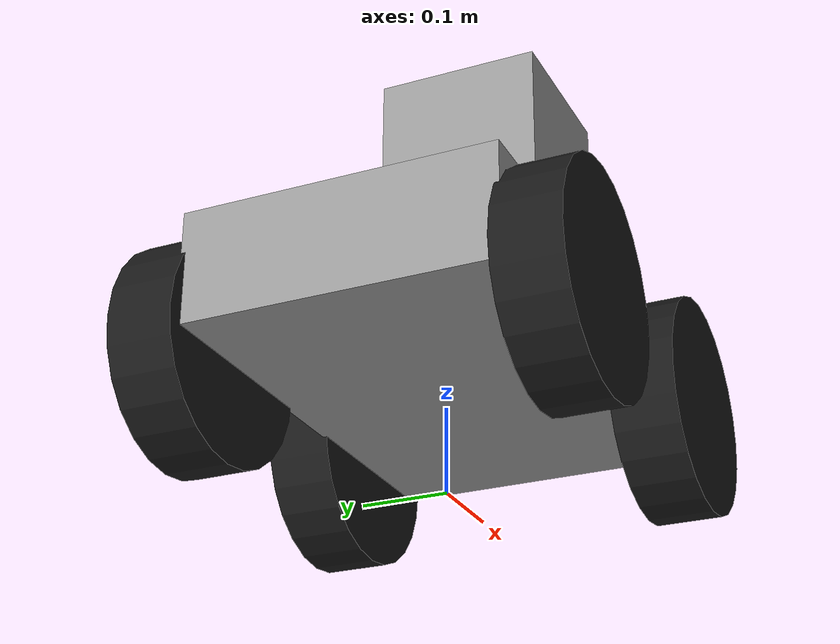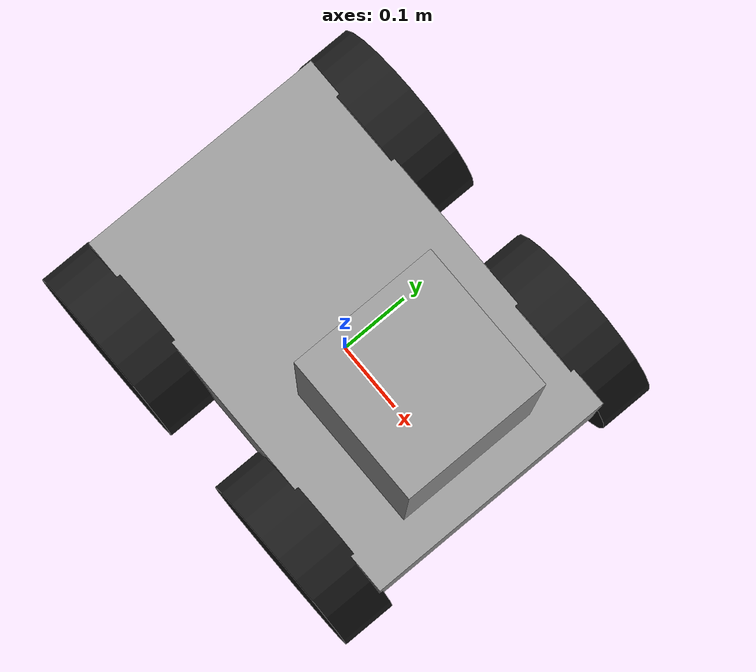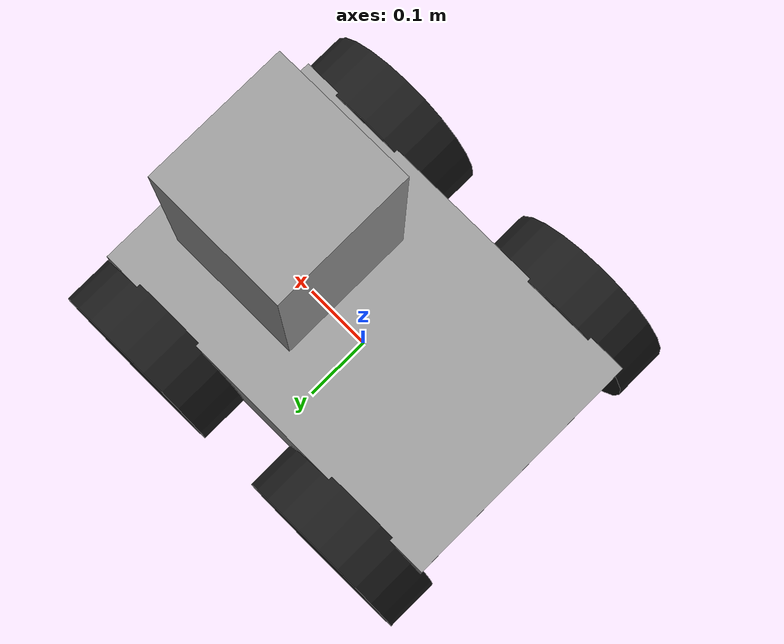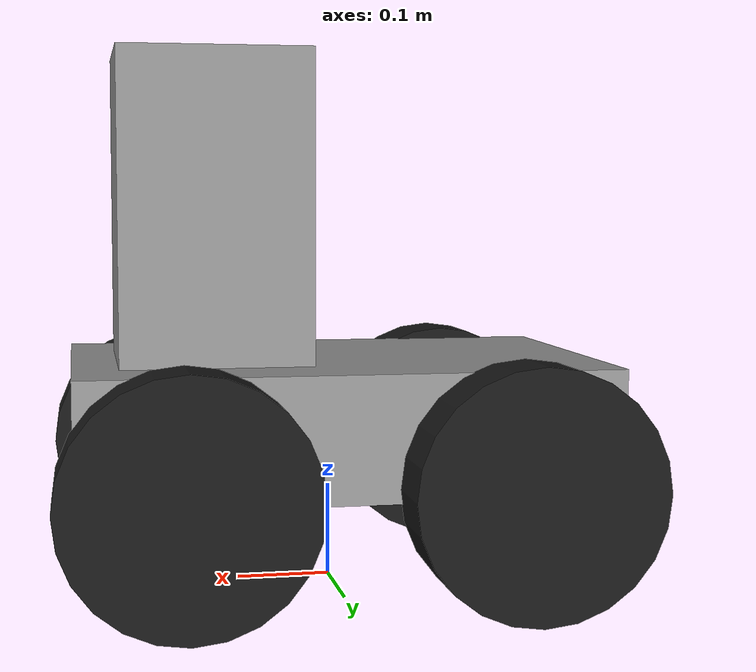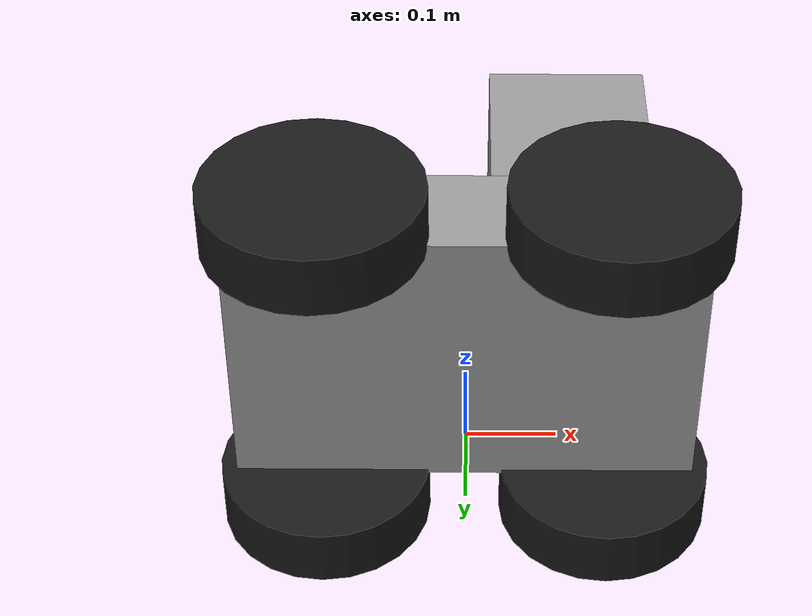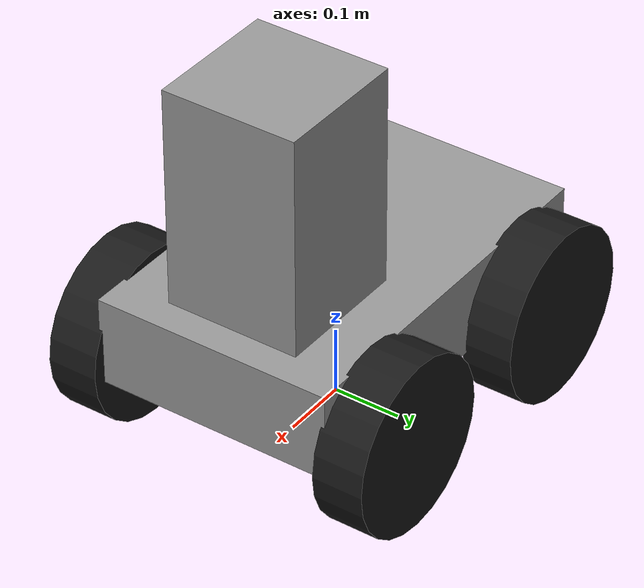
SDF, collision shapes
<?xml version="1.0"?>
<sdf version="1.6">
  <model name="coro_jeanine_sensor_config_1">
    <pose>0 0 0.1275 0 0 0</pose>
    <enable_wind>1</enable_wind>
    <link name="base_link">
      <inertial>
        <pose>0 0 0.09 0 0 0</pose>
        <mass>26.6</mass>
        <inertia>
          <ixx>0.387</ixx>
          <iyy>0.790</iyy>
          <izz>0.962</izz>
        </inertia>
      </inertial>

      <collision name="chassis_collision">
        <pose>0 0 0.05 0 0 0</pose>
        <geometry>
          <box>
            <size>0.555 0.355 0.13</size>
          </box>
        </geometry>
      </collision>
      <collision name="tower_collision">
        <pose>0.13 0 0.27 0 0 0</pose>
        <geometry>
          <box>
            <size>0.2 0.2 0.34</size>
          </box>
        </geometry>
      </collision>

      <visual name="chassis_main_visual">
        <pose>0 0 0.07 0 0 0</pose>
        <geometry>
          <box>
            <size>0.38 0.3 0.13</size>
          </box>
        </geometry>
        <material>
          <ambient>0.6 0.6 0.6 1.0</ambient>
          <diffuse>0.6 0.6 0.6 1.0</diffuse>
        </material>
      </visual>

      <visual name="wheel_mount_visual_front_left">
        <pose>0.17 0.12 0 0 0 0</pose>
        <geometry>
          <box>
            <size>0.03 0.06 0.02</size>
          </box>
        </geometry>
        <material>
          <ambient>0.6 0.6 0.6 1.0</ambient>
          <diffuse>0.6 0.6 0.6 1.0</diffuse>
        </material>
      </visual>
      <visual name="wheel_mount_visual_front_right">
        <pose>0.17 -0.12 0 0 0 0</pose>
        <geometry>
          <box>
            <size>0.03 0.06 0.02</size>
          </box>
        </geometry>
        <material>
          <ambient>0.6 0.6 0.6 1.0</ambient>
          <diffuse>0.6 0.6 0.6 1.0</diffuse>
        </material>
      </visual>
      <visual name="wheel_mount_visual_rear_left">
        <pose>-0.17 0.12 0 0 0 0</pose>
        <geometry>
          <box>
            <size>0.03 0.06 0.02</size>
          </box>
        </geometry>
        <material>
          <ambient>0.6 0.6 0.6 1.0</ambient>
          <diffuse>0.6 0.6 0.6 1.0</diffuse>
        </material>
      </visual>
      <visual name="wheel_mount_visual_rear_right">
        <pose>-0.17 -0.12 0 0 0 0</pose>
        <geometry>
          <box>
            <size>0.03 0.06 0.02</size>
          </box>
        </geometry>
        <material>
          <ambient>0.6 0.6 0.6 1.0</ambient>
          <diffuse>0.6 0.6 0.6 1.0</diffuse>
        </material>
      </visual>

      <visual name="emergency_stop_bottom_visual">
        <pose>0.11 0.125 0.145 0 0 0</pose>
        <geometry>
          <cylinder>
            <length>0.015</length>
            <radius>0.015</radius>
          </cylinder>
        </geometry>
        <material>
          <ambient>0.7059 0.7059 0.7059 1.0</ambient>
          <diffuse>0.7059 0.7059 0.7059 1.0</diffuse>
        </material>
      </visual>
      <visual name="emergency_stop_top_visual">
        <pose>0.11 0.125 0.155 0 0 0</pose>
        <geometry>
          <cylinder>
            <length>0.005</length>
            <radius>0.02</radius>
          </cylinder>
        </geometry>
        <material>
          <ambient>1.0 0.0 0.0 1.0</ambient>
          <diffuse>1.0 0.0 0.0 1.0</diffuse>
        </material>
      </visual>

      <visual name="plate1_visual">
        <pose>0 0 0.435 0 0 0</pose>
        <geometry>
          <box>
            <size>0.2 0.2 0.005</size>
          </box>
        </geometry>
        <material>
          <ambient>200 200 200 1</ambient>
          <diffuse>200 200 200 1</diffuse>
        </material>
      </visual>

      <visual name="plate2_visual">
        <pose>0 0 0.325 0 0 0</pose>
        <geometry>
          <box>
            <size>0.2 0.2 0.005</size>
          </box>
        </geometry>
        <material>
          <ambient>200 200 200 1</ambient>
          <diffuse>200 200 200 1</diffuse>
        </material>
      </visual>

      <visual name="plate3_visual_was12">
        <pose>0 0 0.135 0 0 0</pose>
        <geometry>
          <box>
            <size>0.2 0.2 0.005</size>
          </box>
        </geometry>
        <material>
          <ambient>240 240 240 1</ambient>
          <diffuse>240 240 240 1</diffuse>
        </material>
      </visual>

      <visual name="beam1_visual">
        <pose>0.091 0.091 0.285 0 0 0</pose>
        <geometry>
          <box>
            <size>0.02 0.02 0.3</size>
          </box>
        </geometry>
        <material>
          <ambient>200 200 200 1</ambient>
          <diffuse>200 200 200 1</diffuse>
        </material>
      </visual>
      <visual name="beam2_visual">
        <pose>0.091 -0.091 0.285 0 0 0</pose>
        <geometry>
          <box>
            <size>0.02 0.02 0.3</size>
          </box>
        </geometry>
        <material>
          <ambient>200 200 200 1</ambient>
          <diffuse>200 200 200 1</diffuse>
        </material>
      </visual>
      <visual name="beam3_visual">
        <pose>-0.091 0.091 0.285 0 0 0</pose>
        <geometry>
          <box>
            <size>0.02 0.02 0.3</size>
          </box>
        </geometry>
        <material>
          <ambient>200 200 200 1</ambient>
          <diffuse>200 200 200 1</diffuse>
        </material>
      </visual>
      <visual name="beam4_visual">
        <pose>-0.091 -0.091 0.285 0 0 0</pose>
        <geometry>
          <box>
            <size>0.02 0.02 0.3</size>
          </box>
        </geometry>
        <material>
          <ambient>200 200 200 1</ambient>
          <diffuse>200 200 200 1</diffuse>
        </material>
      </visual>

      <visual name="d435i_realsense_camera_visual">
        <pose>0.08 0 0.408 0 0.52 0</pose>
        <geometry>
          <mesh>
            <scale>0.001 0.001 0.001</scale>
            <uri>../../meshes/joe/visual/realsense_d435.dae</uri>
          </mesh>
        </geometry>
      </visual>

      <visual name="vlp16_visual1">
        <pose>0 0 0.327 0 -0 0</pose>
        <geometry>
          <mesh>
            <scale>1 1 1</scale>
            <uri>../../meshes/joe/visual/VLP16_base_1.dae</uri>
          </mesh>
        </geometry>
      </visual>
      <visual name="vlp_visual2">
        <pose>0 0 0.327 0 -0 0</pose>
        <geometry>
          <mesh>
            <scale>1 1 1</scale>
            <uri>../../meshes/joe/visual/VLP16_base_2.dae</uri>
          </mesh>
        </geometry>
      </visual>
      <visual name="vlp_visual3">
        <pose>0 0 0.327 0 -0 0</pose>
        <geometry>
          <mesh>
            <scale>1 1 1</scale>
            <uri>../../meshes/joe/visual/VLP16_scan.dae</uri>
          </mesh>
        </geometry>
      </visual>

      <!-- MS-IMU3025 -->
      <sensor name="imu_sensor" type="imu">
        <always_on>1</always_on>
        <update_rate>50</update_rate>
        <imu>
                    <enable_orientation>0</enable_orientation>
                    <angular_velocity>
                        <x>
                            <noise type="gaussian">
                                <mean>0</mean>
                                <stddev>0.009</stddev>
                                <bias_mean>0.00075</bias_mean>
                                <bias_stddev>0.005</bias_stddev>
                                <dynamic_bias_stddev>0.00002</dynamic_bias_stddev>
                                <dynamic_bias_correlation_time>400.0</dynamic_bias_correlation_time>
                                <precision>0.00025</precision>
                            </noise>
                        </x>
                        <y>
                            <noise type="gaussian">
                                <mean>0</mean>
                                <stddev>0.009</stddev>
                                <bias_mean>0.00075</bias_mean>
                                <bias_stddev>0.005</bias_stddev>
                                <dynamic_bias_stddev>0.00002</dynamic_bias_stddev>
                                <dynamic_bias_correlation_time>400.0</dynamic_bias_correlation_time>
                                <precision>0.00025</precision>
                            </noise>
                        </y>
                        <z>
                            <noise type="gaussian">
                                <mean>0</mean>
                                <stddev>0.009</stddev>
                                <bias_mean>0.00075</bias_mean>
                                <bias_stddev>0.005</bias_stddev>
                                <dynamic_bias_stddev>0.00002</dynamic_bias_stddev>
                                <dynamic_bias_correlation_time>400.0</dynamic_bias_correlation_time>
                                <precision>0.00025</precision>
                            </noise>
                        </z>
                    </angular_velocity>
                    <linear_acceleration>
                        <x>
                            <noise type="gaussian">
                                <mean>0</mean>
                                <stddev>0.021</stddev>
                                <bias_mean>0.05</bias_mean>
                                <bias_stddev>0.0075</bias_stddev>
                                <dynamic_bias_stddev>0.000375</dynamic_bias_stddev>
                                <dynamic_bias_correlation_time>175.0</dynamic_bias_correlation_time>
                                <precision>0.005</precision>
                            </noise>
                        </x>
                        <y>
                            <noise type="gaussian">
                                <mean>0</mean>
                                <stddev>0.021</stddev>
                                <bias_mean>0.05</bias_mean>
                                <bias_stddev>0.0075</bias_stddev>
                                <dynamic_bias_stddev>0.000375</dynamic_bias_stddev>
                                <dynamic_bias_correlation_time>175.0</dynamic_bias_correlation_time>
                                <precision>0.005</precision>
                            </noise>
                        </y>
                        <z>
                            <noise type="gaussian">
                                <mean>0</mean>
                                <stddev>0.021</stddev>
                                <bias_mean>0.05</bias_mean>
                                <bias_stddev>0.0075</bias_stddev>
                                <dynamic_bias_stddev>0.000375</dynamic_bias_stddev>
                                <dynamic_bias_correlation_time>175.0</dynamic_bias_correlation_time>
                                <precision>0.005</precision>
                            </noise>
                        </z>
                    </linear_acceleration>
                </imu>
      </sensor>
      <sensor name="air_pressure" type="air_pressure">
        <always_on>1</always_on>
        <update_rate>20</update_rate>
        <air_pressure>
          <reference_altitude>0</reference_altitude>
          <noise type="gaussian">
            <mean>0.00000008</mean>
          </noise>
        </air_pressure>
      </sensor>
      <sensor name="magnetometer" type="magnetometer">
        <always_on>1</always_on>
        <update_rate>50</update_rate>
        <magnetometer>
          <x>
            <noise type="gaussian">
              <mean>0.000000080</mean>
              <bias_mean>0.000000400</bias_mean>
            </noise>
          </x>
          <y>
            <noise type="gaussian">
              <mean>0.000000080</mean>
              <bias_mean>0.000000400</bias_mean>
            </noise>
          </y>
          <z>
            <noise type="gaussian">
              <mean>0.000000080</mean>
              <bias_mean>0.000000400</bias_mean>
            </noise>
          </z>
        </magnetometer>
      </sensor>

      <!-- Based on Intel realsense D435 (intrinsics and distortion not modeled)-->
      <sensor name="rgbd_front" type="rgbd_camera">
        <pose>0.11 0 0.408 0 0.52 0</pose>
        <always_on>1</always_on>
        <update_rate>30</update_rate>
        <camera name="rgbd_front">
          <horizontal_fov>1.50098</horizontal_fov>
          <lens>
            <intrinsics>
              <!-- fx = fy = width / ( 2 * tan (hfov / 2 ) ) -->
              <fx>343.159</fx>
              <fy>343.159</fy>
              <!-- cx = ( width - 1 ) / 2 -->
              <cx>319.5</cx>
              <!-- cy = ( height - 1 ) / 2 -->
              <cy>179.5</cy>
              <s>0</s>
            </intrinsics>
          </lens>
          <distortion>
            <k1>0.0</k1>
            <k2>0.0</k2>
            <k3>0.0</k3>
            <p1>0.0</p1>
            <p2>0.0</p2>
            <center>0.5 0.5</center>
          </distortion>
          <image>
            <width>640</width>
            <height>360</height>
            <format>R8G8B8</format>
          </image>
          <clip>
            <near>0.01</near>
            <far>300</far>
          </clip>
          <depth_camera>
            <clip>
              <near>0.1</near>
              <far>10</far>
            </clip>
          </depth_camera>
          <noise>
            <type>gaussian</type>
            <mean>0</mean>
            <stddev>0.007</stddev>
          </noise>
        </camera>
      </sensor>

      <visual name="camera_front_visual">
        <pose>0.09 0.06 0.42 0 0 0</pose>
        <geometry>
          <box>
            <size>0.01 0.03 0.03</size>
          </box>
        </geometry>
        <material>
          <ambient>0.0 0.0 0.0 1.0</ambient>
          <diffuse>0.0 0.0 0.0 1.0</diffuse>
        </material>
      </visual>
      <visual name="camera_lens_front_visual">
        <pose>0.1 0.06 0.42 0 1.5707963267948966 0</pose>
        <geometry>
          <cylinder>
            <length>0.011</length>
            <radius>0.005</radius>
          </cylinder>
        </geometry>
        <material>
          <ambient>0.0 0.0 0.0 1.0</ambient>
          <diffuse>0.0 0.0 0.0 1.0</diffuse>
        </material>
      </visual>

      <visual name="camera_rear_visual">
        <pose>-0.09 0 0.42 0 0 0</pose>
        <geometry>
          <box>
            <size>0.01 0.03 0.03</size>
          </box>
        </geometry>
        <material>
          <ambient>0.0 0.0 0.0 1.0</ambient>
          <diffuse>0.0 0.0 0.0 1.0</diffuse>
        </material>
      </visual>
      <visual name="camera_lens_rear_visual">
        <pose>-0.1 0 0.42 0 1.5707963267948966 0</pose>
        <geometry>
          <cylinder>
            <length>0.011</length>
            <radius>0.005</radius>
          </cylinder>
        </geometry>
        <material>
          <ambient>0.0 0.0 0.0 1.0</ambient>
          <diffuse>0.0 0.0 0.0 1.0</diffuse>
        </material>
      </visual>

      <visual name="camera_left_visual">
        <pose>0 0.09 0.42 0 0 0</pose>
        <geometry>
          <box>
            <size>0.03 0.01 0.03</size>
          </box>
        </geometry>
        <material>
          <ambient>0.0 0.0 0.0 1.0</ambient>
          <diffuse>0.0 0.0 0.0 1.0</diffuse>
        </material>
      </visual>
      <visual name="camera_lens_left_visual">
        <pose>0 0.1 0.42 1.5707963267948966 0 0</pose>
        <geometry>
          <cylinder>
            <length>0.011</length>
            <radius>0.005</radius>
          </cylinder>
        </geometry>
        <material>
          <ambient>0.0 0.0 0.0 1.0</ambient>
          <diffuse>0.0 0.0 0.0 1.0</diffuse>
        </material>
      </visual>

      <visual name="camera_right_visual">
        <pose>0 -0.09 0.42 0 0 0</pose>
        <geometry>
          <box>
            <size>0.03 0.01 0.03</size>
          </box>
        </geometry>
        <material>
          <ambient>0.0 0.0 0.0 1.0</ambient>
          <diffuse>0.0 0.0 0.0 1.0</diffuse>
        </material>
      </visual>
      <visual name="camera_lens_right_visual">
        <pose>0 -0.1 0.42 1.5707963267948966 0 0</pose>
        <geometry>
          <cylinder>
            <length>0.011</length>
            <radius>0.005</radius>
          </cylinder>
        </geometry>
        <material>
          <ambient>0.0 0.0 0.0 1.0</ambient>
          <diffuse>0.0 0.0 0.0 1.0</diffuse>
        </material>
      </visual>

      <!-- Real robot has 2 x B0203 with LN008 each with a 180 deg hor x 130 deg vert FOV
           Since fisheye cameras are not modeled, four cameras are used in the model -->
      <sensor name="camera_front" type="camera">
        <pose>0.11 0.06 0.42 0 0 0</pose>
        <always_on>1</always_on>
        <update_rate>25</update_rate>
        <camera name="camera_front">
          <horizontal_fov>1.658</horizontal_fov>
          <lens>
            <intrinsics>
              <!-- fx = fy = width / ( 2 * tan (hfov / 2 ) ) -->
              <fx>329.9</fx>
              <fy>329.9</fy>
              <!-- cx = ( width - 1 ) / 2 -->
              <cx>359.5</cx>
              <!-- cy = ( height - 1 ) / 2 -->
              <cy>539.5</cy>
              <s>0</s>
            </intrinsics>
          </lens>
          <distortion>
            <k1>0.0</k1>
            <k2>0.0</k2>
            <k3>0.0</k3>
            <p1>0.0</p1>
            <p2>0.0</p2>
            <center>0.5 0.5</center>
          </distortion>
          <image>
            <width>720</width>
            <height>1080</height>
            <format>R8G8B8</format>
          </image>
          <clip>
            <near>0.01</near>
            <far>300</far>
          </clip>
          <noise>
            <type>gaussian</type>
            <mean>0</mean>
            <stddev>0.007</stddev>
          </noise>
        </camera>
      </sensor>

      <sensor name="camera_rear" type="camera">
        <pose>-0.11 0 0.42 0 0 3.141592653589793</pose>
        <always_on>1</always_on>
        <update_rate>25</update_rate>
        <camera name="camera_front">
          <horizontal_fov>1.658</horizontal_fov>
          <lens>
            <intrinsics>
              <!-- fx = fy = width / ( 2 * tan (hfov / 2 ) ) -->
              <fx>329.9</fx>
              <fy>329.9</fy>
              <!-- cx = ( width - 1 ) / 2 -->
              <cx>359.5</cx>
              <!-- cy = ( height - 1 ) / 2 -->
              <cy>539.5</cy>
              <s>0</s>
            </intrinsics>
          </lens>
          <distortion>
            <k1>0.0</k1>
            <k2>0.0</k2>
            <k3>0.0</k3>
            <p1>0.0</p1>
            <p2>0.0</p2>
            <center>0.5 0.5</center>
          </distortion>
          <image>
            <width>720</width>
            <height>1080</height>
            <format>R8G8B8</format>
          </image>
          <clip>
            <near>0.01</near>
            <far>300</far>
          </clip>
          <noise>
            <type>gaussian</type>
            <mean>0</mean>
            <stddev>0.007</stddev>
          </noise>
        </camera>
      </sensor>

      <sensor name="camera_left" type="camera">
        <pose>0 0.11 0.42 0 0 1.5707963267948966</pose>
        <always_on>1</always_on>
        <update_rate>25</update_rate>
        <camera name="camera_front">
          <horizontal_fov>1.658</horizontal_fov>
          <lens>
            <intrinsics>
              <!-- fx = fy = width / ( 2 * tan (hfov / 2 ) ) -->
              <fx>329.9</fx>
              <fy>329.9</fy>
              <!-- cx = ( width - 1 ) / 2 -->
              <cx>359.5</cx>
              <!-- cy = ( height - 1 ) / 2 -->
              <cy>539.5</cy>
              <s>0</s>
            </intrinsics>
          </lens>
          <distortion>
            <k1>0.0</k1>
            <k2>0.0</k2>
            <k3>0.0</k3>
            <p1>0.0</p1>
            <p2>0.0</p2>
            <center>0.5 0.5</center>
          </distortion>
          <image>
            <width>720</width>
            <height>1080</height>
            <format>R8G8B8</format>
          </image>
          <clip>
            <near>0.01</near>
            <far>300</far>
          </clip>
          <noise>
            <type>gaussian</type>
            <mean>0</mean>
            <stddev>0.007</stddev>
          </noise>
        </camera>
      </sensor>

      <sensor name="camera_right" type="camera">
        <pose>0 -0.11 0.42 0 0 -1.5707963267948966</pose>
        <always_on>1</always_on>
        <update_rate>25</update_rate>
        <camera name="camera_front">
          <horizontal_fov>1.658</horizontal_fov>
          <lens>
            <intrinsics>
              <!-- fx = fy = width / ( 2 * tan (hfov / 2 ) ) -->
              <fx>329.9</fx>
              <fy>329.9</fy>
              <!-- cx = ( width - 1 ) / 2 -->
              <cx>359.5</cx>
              <!-- cy = ( height - 1 ) / 2 -->
              <cy>539.5</cy>
              <s>0</s>
            </intrinsics>
          </lens>
          <distortion>
            <k1>0.0</k1>
            <k2>0.0</k2>
            <k3>0.0</k3>
            <p1>0.0</p1>
            <p2>0.0</p2>
            <center>0.5 0.5</center>
          </distortion>
          <image>
            <width>720</width>
            <height>1080</height>
            <format>R8G8B8</format>
          </image>
          <clip>
            <near>0.01</near>
            <far>300</far>
          </clip>
          <noise>
            <type>gaussian</type>
            <mean>0</mean>
            <stddev>0.007</stddev>
          </noise>
        </camera>
      </sensor>

      <sensor name="front_laser" type="gpu_lidar">
        <visualize>0</visualize>
        <update_rate>10</update_rate>
        <lidar>
          <scan>
            <horizontal>
              <samples>1800</samples>
              <resolution>1</resolution>
              <min_angle>-3.1459</min_angle>
              <max_angle>3.1459</max_angle>
            </horizontal>
            <vertical>
              <samples>16</samples>
              <resolution>1</resolution>
              <min_angle>-0.261799</min_angle>
              <max_angle>0.261799</max_angle>
            </vertical>
          </scan>
          <range>
            <min>0.05</min>
            <max>100</max>
            <resolution>0.01</resolution>
          </range>
          <noise>
            <type>gaussian</type>
            <mean>0</mean>
            <stddev>0.01</stddev>
          </noise>
        </lidar>
        <pose frame="">0 0 0.365 0 -0 0</pose>
      </sensor>

      <visual name="light_front_visual">
        <pose>0.09 0 0.457 0 0 0</pose>
        <geometry>
          <box>
            <size>0.04 0.13 0.04</size>
          </box>
        </geometry>
        <material>
          <ambient>0.0 0.0 0.0 1.0</ambient>
          <diffuse>0.0 0.0 0.0 1.0</diffuse>
        </material>
      </visual>
      <light name="light_front" type="spot">
        <pose>0.12 0 0.457 0 -1.5707963267948966 0</pose>
        <attenuation>
          <range>25</range>
          <linear>0</linear>
          <constant>0.1</constant>
          <quadratic>0.005</quadratic>
        </attenuation>
        <diffuse>0.8 0.8 0.5 1.0</diffuse>
        <specular>0.8 0.8 0.5 1</specular>
        <spot>
          <inner_angle>1.571</inner_angle>
          <outer_angle>2.1</outer_angle>
          <falloff>1</falloff>
        </spot>
        <direction>1 0 0</direction>
        <cast_shadows>1</cast_shadows>
      </light>

      <visual name="light_rear_visual">
        <pose>-0.09 0 0.457 0 0 0</pose>
        <geometry>
          <box>
            <size>0.04 0.12 0.04</size>
          </box>
        </geometry>
        <material>
          <ambient>0.0 0.0 0.0 1.0</ambient>
          <diffuse>0.0 0.0 0.0 1.0</diffuse>
        </material>
      </visual>
      <light name="light_rear" type="spot">
        <pose>-0.12 0 0.457 0 1.5707963267948966 0</pose>
        <attenuation>
          <range>25</range>
          <linear>0</linear>
          <constant>0.1</constant>
          <quadratic>0.005</quadratic>
        </attenuation>
        <diffuse>0.8 0.8 0.5 1.0</diffuse>
        <specular>0.8 0.8 0.5 1</specular>
        <spot>
          <inner_angle>1.571</inner_angle>
          <outer_angle>2.1</outer_angle>
          <falloff>1</falloff>
        </spot>
        <direction>1 0 0</direction>
        <cast_shadows>1</cast_shadows>
      </light>

      <visual name="light_left_visual">
        <pose>0 0.09 0.457 0 0 0</pose>
        <geometry>
          <box>
            <size>0.12 0.04 0.04</size>
          </box>
        </geometry>
        <material>
          <ambient>0.0 0.0 0.0 1.0</ambient>
          <diffuse>0.0 0.0 0.0 1.0</diffuse>
        </material>
      </visual>
      <light name="light_left" type="spot">
        <pose>0 0.12 0.457 1.5707963267948966 0 0</pose>
        <attenuation>
          <range>25</range>
          <linear>0</linear>
          <constant>0.1</constant>
          <quadratic>0.005</quadratic>
        </attenuation>
        <diffuse>0.8 0.8 0.5 1.0</diffuse>
        <specular>0.8 0.8 0.5 1</specular>
        <spot>
          <inner_angle>1.571</inner_angle>
          <outer_angle>2.1</outer_angle>
          <falloff>1</falloff>
        </spot>
        <direction>1 0 0</direction>
        <cast_shadows>1</cast_shadows>
      </light>

      <visual name="light_right_visual">
        <pose>0 -0.09 0.457 0 0 0</pose>
        <geometry>
          <box>
            <size>0.12 0.04 0.04</size>
          </box>
        </geometry>
        <material>
          <ambient>0.0 0.0 0.0 1.0</ambient>
          <diffuse>0.0 0.0 0.0 1.0</diffuse>
        </material>
      </visual>
      <light name="light_right" type="spot">
        <pose>0 -0.12 0.457 -1.5707963267948966 0 0</pose>
        <attenuation>
          <range>25</range>
          <linear>0</linear>
          <constant>0.1</constant>
          <quadratic>0.005</quadratic>
        </attenuation>
        <diffuse>0.8 0.8 0.5 1.0</diffuse>
        <specular>0.8 0.8 0.5 1</specular>
        <spot>
          <inner_angle>1.571</inner_angle>
          <outer_angle>2.1</outer_angle>
          <falloff>1</falloff>
        </spot>
        <direction>1 0 0</direction>
        <cast_shadows>1</cast_shadows>
      </light>
    </link>

    <link name="front_left_wheel">
      <pose>0.17 0.21 0 0 0 0</pose>
      <inertial>
        <mass>5.0</mass>
        <inertia>
          <ixx>0.0153</ixx>
          <iyy>0.025</iyy>
          <izz>0.0153</izz>
        </inertia>
      </inertial>
      <collision name="front_left_wheel_collision">
        <pose>0 0 0 -1.5707963267948966 0 0</pose>
        <geometry>
          <cylinder>
            <length>0.075</length>
            <radius>0.1275</radius>
          </cylinder>
        </geometry>
        <surface>
          <friction>
            <ode>
              <mu>0.5</mu>
              <mu2>1</mu2>
              <slip1>0.0016</slip1>
              <slip2>0</slip2>
              <fdir1>0 0 1</fdir1>
            </ode>
          </friction>
        </surface>
      </collision>
      <visual name="front_left_wheel_tire_visual">
        <pose>0 0 0 1.5708 0 0</pose>
        <geometry>
          <mesh>
            <uri>../../meshes/joe/visual/wheel_left.dae</uri>
            <scale>1.22 1.22 1.71</scale>
          </mesh>
        </geometry>
      </visual>
      <visual name="front_left_wheel_axle_visual">
        <pose>0 -0.055 0 1.5707963267948966 0 0</pose>
        <geometry>
          <cylinder>
            <length>0.05</length>
            <radius>0.007</radius>
          </cylinder>
        </geometry>
        <material>
          <ambient>0.1 0.1 0.1 1.0</ambient>
          <diffuse>0.1 0.1 0.1 1.0</diffuse>
        </material>
      </visual>
    </link>

    <link name="front_right_wheel">
      <pose>0.17 -0.21 0 0 0 0</pose>
      <inertial>
        <mass>5.0</mass>
        <inertia>
          <ixx>0.0153</ixx>
          <iyy>0.025</iyy>
          <izz>0.0153</izz>
        </inertia>
      </inertial>
      <collision name="front_right_wheel_collision">
        <pose>0 0 0 1.5707963267948966 0 0</pose>
        <geometry>
          <cylinder>
            <length>0.075</length>
            <radius>0.1275</radius>
          </cylinder>
        </geometry>
        <surface>
          <friction>
            <ode>
              <mu>0.5</mu>
              <mu2>1</mu2>
              <slip1>0.0016</slip1>
              <slip2>0</slip2>
              <fdir1>0 0 1</fdir1>
            </ode>
          </friction>
        </surface>
      </collision>
      <visual name="front_right_wheel_tire_visual">
        <pose>0 0 0 1.5708 0 0</pose>
        <geometry>
          <mesh>
            <uri>../../meshes/joe/visual/wheel_right.dae</uri>
            <scale>1.22 1.22 1.71</scale>
          </mesh>
        </geometry>
      </visual>
      <visual name="front_right_wheel_axle_visual">
        <pose>0 0.055 0 1.5707963267948966 0 0</pose>
        <geometry>
          <cylinder>
            <length>0.05</length>
            <radius>0.007</radius>
          </cylinder>
        </geometry>
        <material>
          <ambient>0.1 0.1 0.1 1.0</ambient>
          <diffuse>0.1 0.1 0.1 1.0</diffuse>
        </material>
      </visual>
    </link>

    <link name="rear_left_wheel">
      <pose>-0.17 0.21 0 0 0 0</pose>
      <inertial>
        <mass>5.0</mass>
        <inertia>
          <ixx>0.0153</ixx>
          <iyy>0.025</iyy>
          <izz>0.0153</izz>
        </inertia>
      </inertial>
      <collision name="rear_left_wheel_collision">
        <pose>0 0 0 -1.5707963267948966 0 0</pose>
        <geometry>
          <cylinder>
            <length>0.075</length>
            <radius>0.1275</radius>
          </cylinder>
        </geometry>
        <surface>
          <friction>
            <ode>
              <mu>0.5</mu>
              <mu2>1</mu2>
              <slip1>0.0016</slip1>
              <slip2>0</slip2>
              <fdir1>0 0 1</fdir1>
            </ode>
          </friction>
        </surface>
      </collision>
      <visual name="rear_left_wheel_tire_visual">
        <pose>0 0 0 1.5708 0 0</pose>
        <geometry>
          <mesh>
            <uri>../../meshes/joe/visual/wheel_left.dae</uri>
            <scale>1.22 1.22 1.71</scale>
          </mesh>
        </geometry>
      </visual>
      <visual name="rear_left_wheel_axle_visual">
        <pose>0 -0.055 0 1.5707963267948966 0 0</pose>
        <geometry>
          <cylinder>
            <length>0.05</length>
            <radius>0.007</radius>
          </cylinder>
        </geometry>
        <material>
          <ambient>0.1 0.1 0.1 1.0</ambient>
          <diffuse>0.1 0.1 0.1 1.0</diffuse>
        </material>
      </visual>
    </link>

    <link name="rear_right_wheel">
      <pose>-0.17 -0.21 0 0 0 0</pose>
      <inertial>
        <mass>5.0</mass>
        <inertia>
          <ixx>0.0153</ixx>
          <iyy>0.025</iyy>
          <izz>0.0153</izz>
        </inertia>
      </inertial>
      <collision name="rear_right_wheel_collision">
        <pose>0 0 0 1.5707963267948966 0 0</pose>
        <geometry>
          <cylinder>
            <length>0.075</length>
            <radius>0.1275</radius>
          </cylinder>
        </geometry>
        <surface>
          <friction>
            <ode>
              <mu>0.5</mu>
              <mu2>1</mu2>
              <slip1>0.0016</slip1>
              <slip2>0</slip2>
              <fdir1>0 0 1</fdir1>
            </ode>
          </friction>
        </surface>
      </collision>
      <visual name="rear_right_wheel_tire_visual">
        <pose>0 0 0 1.5708 0 0</pose>
        <geometry>
          <mesh>
            <uri>../../meshes/joe/visual/wheel_right.dae</uri>
            <scale>1.22 1.22 1.71</scale>
          </mesh>
        </geometry>
      </visual>
      <visual name="rear_right_wheel_axle_visual">
        <pose>0 0.055 0 1.5707963267948966 0 0</pose>
        <geometry>
          <cylinder>
            <length>0.05</length>
            <radius>0.007</radius>
          </cylinder>
        </geometry>
        <material>
          <ambient>0.1 0.1 0.1 1.0</ambient>
          <diffuse>0.1 0.1 0.1 1.0</diffuse>
        </material>
      </visual>
    </link>

    <!-- Hoverboard motors code from Freyja -->
    <joint name="front_left_wheel_joint" type="revolute">
      <child>front_left_wheel</child>
      <parent>base_link</parent>
      <axis>
        <xyz>0 1 0</xyz>
        <limit>
          <lower>-1.79769e+308</lower>
          <upper>+1.79769e+308</upper>
          <velocity>19.61</velocity>
          <effort>10</effort>
        </limit>
        <use_parent_model_frame>1</use_parent_model_frame>
      </axis>
    </joint>

    <joint name="rear_left_wheel_joint" type="revolute">
      <parent>base_link</parent>
      <child>rear_left_wheel</child>
      <axis>
        <xyz>0 1 0</xyz>
        <limit>
          <lower>-1.79769e+308</lower>
          <upper>+1.79769e+308</upper>
          <velocity>19.61</velocity>
          <effort>10</effort>
        </limit>
      </axis>
    </joint>

    <joint name="rear_right_wheel_joint" type="revolute">
      <parent>base_link</parent>
      <child>rear_right_wheel</child>
      <axis>
        <xyz>0 1 0</xyz>
        <limit>
          <lower>-1.79769e+308</lower>
          <upper>+1.79769e+308</upper>
          <velocity>19.61</velocity>
          <effort>10</effort>
        </limit>
      </axis>
    </joint>

    <joint name="front_right_wheel_joint" type="revolute">
      <parent>base_link</parent>
      <child>front_right_wheel</child>
      <axis>
        <xyz>0 1 0</xyz>
        <limit>
          <lower>-1.79769e+308</lower>
          <upper>+1.79769e+308</upper>
          <velocity>19.61</velocity>
          <effort>10</effort>
        </limit>
      </axis>
    </joint>

  </model>
</sdf>
